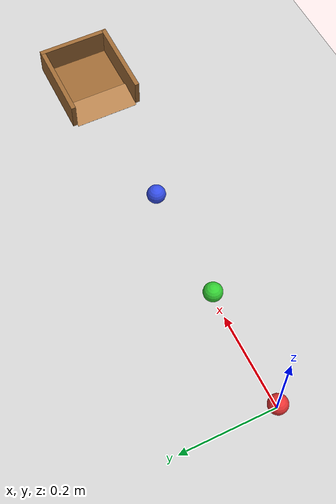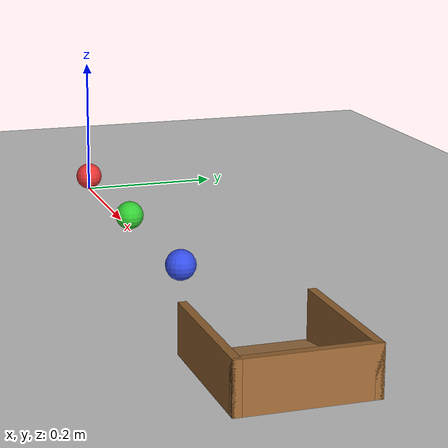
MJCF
<mujoco model="three_ball_chain">
  <option timestep="0.002"/>
  <worldbody>
    <light name="sun" pos="0.4 0 2" dir="0 0 -1"/>
    <geom name="floor" type="plane" size="3 3 0.1" friction="0.5 0.005 0.0001" rgba="0.8 0.8 0.8 1"/>

    <body name="ball1" pos="0 0 0.02">
      <freejoint name="ball1_free"/>
      <geom name="ball1_geom" type="sphere" size="0.02" friction="0.5 0.005 0.0001" rgba="0.9 0.2 0.2 1"/>
    </body>
    <body name="ball2" pos="0.25 0 0.02">
      <freejoint name="ball2_free"/>
      <geom name="ball2_geom" type="sphere" size="0.02" friction="0.5 0.005 0.0001" rgba="0.2 0.8 0.2 1"/>
    </body>
    <body name="ball3" pos="0.5 0 0.02">
      <freejoint name="ball3_free"/>
      <geom name="ball3_geom" type="sphere" size="0.02" friction="0.5 0.005 0.0001" rgba="0.2 0.3 0.9 1"/>
    </body>

    <body name="cup" pos="0.85 0 0">
      <geom name="cup_ramp" type="box" size="0.03 0.07 0.005" pos="-0.0742 0 -0.0009" euler="0 -9.09 0" friction="0.5 0.005 0.0001" rgba="0.7 0.5 0.3 1"/>
      <geom name="cup_floor" type="box" size="0.057 0.07 0.001" pos="0.013 0 0.001" friction="0.5 0.005 0.0001" rgba="0.6 0.4 0.2 1"/>
      <geom name="cup_back" type="box" size="0.005 0.08 0.03" pos="0.075 0 0.03" friction="0.5 0.005 0.0001" rgba="0.6 0.4 0.2 1"/>
      <geom name="cup_side_left" type="box" size="0.09 0.005 0.03" pos="-0.01 0.075 0.03" friction="0.5 0.005 0.0001" rgba="0.6 0.4 0.2 1"/>
      <geom name="cup_side_right" type="box" size="0.09 0.005 0.03" pos="-0.01 -0.075 0.03" friction="0.5 0.005 0.0001" rgba="0.6 0.4 0.2 1"/>
    </body>
  </worldbody>

  <contact>
    <pair name="pair_b1_b2" geom1="ball1_geom" geom2="ball2_geom" condim="3" friction="0.5 0.5 0.005 0.0001 0.0001" solref="0.005 0.05"/>
    <pair name="pair_b2_b3" geom1="ball2_geom" geom2="ball3_geom" condim="3" friction="0.5 0.5 0.005 0.0001 0.0001" solref="0.005 0.05"/>
    <pair name="pair_b1_b3" geom1="ball1_geom" geom2="ball3_geom" condim="3" friction="0.5 0.5 0.005 0.0001 0.0001" solref="0.005 0.05"/>
  </contact>

  <keyframe>
    <key name="start" qpos="0 0 0.02 1 0 0 0  0.25 0 0.02 1 0 0 0  0.5 0 0.02 1 0 0 0" qvel="2 0 0 0 100 0  0 0 0 0 0 0  0 0 0 0 0 0"/>
  </keyframe>
</mujoco>
